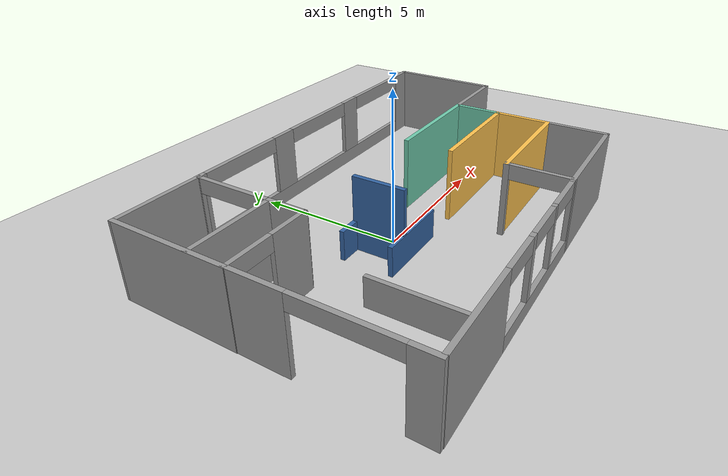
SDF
<sdf version="1.7">
 <world name="default">
  <model name="ground_plane">
   <static>1</static>
   <link name="link">
    <collision name="collision">
     <geometry><plane><normal>0 0 1</normal><size>100 100</size></plane></geometry>
     <surface>
      <contact><collide_bitmask>65535</collide_bitmask></contact>
      <friction><ode><mu>100</mu><mu2>50</mu2></ode></friction>
     </surface>
    </collision>
    <visual name="visual">
     <cast_shadows>0</cast_shadows>
     <geometry><plane><normal>0 0 1</normal><size>100 100</size></plane></geometry>
     <material>
      <script><uri>file://media/materials/scripts/gazebo.material</uri><name>Gazebo/Grey</name></script>
     </material>
    </visual>
   </link>
  </model>
  <model name="fablab_view">
   <pose>1.31147 -0.032179 0 0 -0 0</pose>
   <link name="Wall_11">
    <collision name="Wall_11_Collision">
     <geometry><box><size>1.75 0.15 2.5</size></box></geometry>
     <pose>0 0 1.25 0 -0 0</pose>
    </collision>
    <visual name="Wall_11_Visual">
     <pose>0 0 1.25 0 -0 0</pose>
     <geometry><box><size>1.75 0.15 2.5</size></box></geometry>
     <material>
      <script><uri>file://media/materials/scripts/gazebo.material</uri><name>Gazebo/Grey</name></script>
      <ambient>0.435294 0.796078 0.67451 1</ambient>
     </material>
     <meta><layer>0</layer></meta>
    </visual>
    <pose>4.7545 0.019496 0 0 -0 1.5708</pose>
   </link>
   <link name="Wall_12">
    <collision name="Wall_12_Collision">
     <geometry><box><size>4 0.15 2.5</size></box></geometry>
     <pose>0 0 1.25 0 -0 0</pose>
    </collision>
    <visual name="Wall_12_Visual">
     <pose>0 0 1.25 0 -0 0</pose>
     <geometry><box><size>4 0.15 2.5</size></box></geometry>
     <material>
      <script><uri>file://media/materials/scripts/gazebo.material</uri><name>Gazebo/Grey</name></script>
      <ambient>0.435294 0.796078 0.67451 1</ambient>
     </material>
     <meta><layer>0</layer></meta>
    </visual>
    <pose>2.8295 0.819496 0 0 -0 3.14159</pose>
   </link>
   <link name="Wall_14">
    <collision name="Wall_14_Collision">
     <geometry><box><size>2.75 0.15 2.5</size></box></geometry>
     <pose>0 0 1.25 0 -0 0</pose>
    </collision>
    <visual name="Wall_14_Visual">
     <pose>0 0 1.25 0 -0 0</pose>
     <geometry><box><size>2.75 0.15 2.5</size></box></geometry>
     <material>
      <script><uri>file://media/materials/scripts/gazebo.material</uri><name>Gazebo/Grey</name></script>
      <ambient>1 1 1 1</ambient>
     </material>
     <meta><layer>0</layer></meta>
    </visual>
    <pose>6.0545 0.819496 0 0 -0 0</pose>
   </link>
   <link name="Wall_15">
    <collision name="Wall_15_Collision">
     <geometry><box><size>4 0.15 2.5</size></box></geometry>
     <pose>0 0 1.25 0 -0 0</pose>
    </collision>
    <visual name="Wall_15_Visual">
     <pose>0 0 1.25 0 -0 0</pose>
     <geometry><box><size>4 0.15 2.5</size></box></geometry>
     <material>
      <script><uri>file://media/materials/scripts/gazebo.material</uri><name>Gazebo/Grey</name></script>
      <ambient>1 1 1 1</ambient>
     </material>
     <meta><layer>0</layer></meta>
    </visual>
    <pose>7.3545 2.7445 0 0 -0 1.5708</pose>
   </link>
   <link name="Wall_16">
    <pose>1.4295 4.6695 0 0 -0 3.14159</pose>
    <visual name="Wall_16_Visual_0">
     <pose>-5.53886 0 1.25 0 -0 0</pose>
     <geometry><box><size>0.922275 0.15 2.5</size></box></geometry>
     <material>
      <script><uri>file://media/materials/scripts/gazebo.material</uri><name>Gazebo/Grey</name></script>
      <ambient>1 1 1 1</ambient>
     </material>
     <meta><layer>0</layer></meta>
    </visual>
    <collision name="Wall_16_Collision_0">
     <geometry><box><size>0.922275 0.15 2.5</size></box></geometry>
     <pose>-5.53886 0 1.25 0 -0 0</pose>
    </collision>
    <visual name="Wall_16_Visual_1">
     <pose>0.461138 0 0.25 0 -0 0</pose>
     <geometry><box><size>11.0777 0.15 0.5</size></box></geometry>
     <material>
      <script><uri>file://media/materials/scripts/gazebo.material</uri><name>Gazebo/Grey</name></script>
      <ambient>1 1 1 1</ambient>
     </material>
     <meta><layer>0</layer></meta>
    </visual>
    <collision name="Wall_16_Collision_1">
     <geometry><box><size>11.0777 0.15 0.5</size></box></geometry>
     <pose>0.461138 0 0.25 0 -0 0</pose>
    </collision>
    <visual name="Wall_16_Visual_2">
     <pose>-1.65957 0 1.5 0 -0 0</pose>
     <geometry><box><size>0.836307 0.15 2</size></box></geometry>
     <material>
      <script><uri>file://media/materials/scripts/gazebo.material</uri><name>Gazebo/Grey</name></script>
      <ambient>1 1 1 1</ambient>
     </material>
     <meta><layer>0</layer></meta>
    </visual>
    <collision name="Wall_16_Collision_2">
     <geometry><box><size>0.836307 0.15 2</size></box></geometry>
     <pose>-1.65957 0 1.5 0 -0 0</pose>
    </collision>
    <visual name="Wall_16_Visual_3">
     <pose>2.21629 0 1.5 0 -0 0</pose>
     <geometry><box><size>0.915406 0.15 2</size></box></geometry>
     <material>
      <script><uri>file://media/materials/scripts/gazebo.material</uri><name>Gazebo/Grey</name></script>
      <ambient>1 1 1 1</ambient>
     </material>
     <meta><layer>0</layer></meta>
    </visual>
    <collision name="Wall_16_Collision_3">
     <geometry><box><size>0.915406 0.15 2</size></box></geometry>
     <pose>2.21629 0 1.5 0 -0 0</pose>
    </collision>
    <visual name="Wall_16_Visual_4">
     <pose>5.83699 0 1.5 0 -0 0</pose>
     <geometry><box><size>0.326012 0.15 2</size></box></geometry>
     <material>
      <script><uri>file://media/materials/scripts/gazebo.material</uri><name>Gazebo/Grey</name></script>
      <ambient>1 1 1 1</ambient>
     </material>
     <meta><layer>0</layer></meta>
    </visual>
    <collision name="Wall_16_Collision_4">
     <geometry><box><size>0.326012 0.15 2</size></box></geometry>
     <pose>5.83699 0 1.5 0 -0 0</pose>
    </collision>
    <visual name="Wall_16_Visual_5">
     <pose>-3.57773 0 2.25 0 -0 0</pose>
     <geometry><box><size>3 0.15 0.5</size></box></geometry>
     <material>
      <script><uri>file://media/materials/scripts/gazebo.material</uri><name>Gazebo/Grey</name></script>
      <ambient>1 1 1 1</ambient>
     </material>
     <meta><layer>0</layer></meta>
    </visual>
    <collision name="Wall_16_Collision_5">
     <geometry><box><size>3 0.15 0.5</size></box></geometry>
     <pose>-3.57773 0 2.25 0 -0 0</pose>
    </collision>
    <visual name="Wall_16_Visual_6">
     <pose>0.258582 0 2.25 0 -0 0</pose>
     <geometry><box><size>3 0.15 0.5</size></box></geometry>
     <material>
      <script><uri>file://media/materials/scripts/gazebo.material</uri><name>Gazebo/Grey</name></script>
      <ambient>1 1 1 1</ambient>
     </material>
     <meta><layer>0</layer></meta>
    </visual>
    <collision name="Wall_16_Collision_6">
     <geometry><box><size>3 0.15 0.5</size></box></geometry>
     <pose>0.258582 0 2.25 0 -0 0</pose>
    </collision>
    <visual name="Wall_16_Visual_7">
     <pose>4.17399 0 2.25 0 -0 0</pose>
     <geometry><box><size>3 0.15 0.5</size></box></geometry>
     <material>
      <script><uri>file://media/materials/scripts/gazebo.material</uri><name>Gazebo/Grey</name></script>
      <ambient>1 1 1 1</ambient>
     </material>
     <meta><layer>0</layer></meta>
    </visual>
    <collision name="Wall_16_Collision_7">
     <geometry><box><size>3 0.15 0.5</size></box></geometry>
     <pose>4.17399 0 2.25 0 -0 0</pose>
    </collision>
   </link>
   <link name="Wall_17">
    <pose>-4.4955 2.7445 0 0 -0 -1.5708</pose>
    <visual name="Wall_17_Visual_0">
     <pose>-1.90468 0 1.25 0 -0 0</pose>
     <geometry><box><size>0.190639 0.15 2.5</size></box></geometry>
     <material>
      <script><uri>file://media/materials/scripts/gazebo.material</uri><name>Gazebo/Grey</name></script>
      <ambient>1 1 1 1</ambient>
     </material>
     <meta><layer>0</layer></meta>
    </visual>
    <collision name="Wall_17_Collision_0">
     <geometry><box><size>0.190639 0.15 2.5</size></box></geometry>
     <pose>-1.90468 0 1.25 0 -0 0</pose>
    </collision>
    <visual name="Wall_17_Visual_1">
     <pose>1.33216 0 1.25 0 -0 0</pose>
     <geometry><box><size>1.33569 0.15 2.5</size></box></geometry>
     <material>
      <script><uri>file://media/materials/scripts/gazebo.material</uri><name>Gazebo/Grey</name></script>
      <ambient>1 1 1 1</ambient>
     </material>
     <meta><layer>0</layer></meta>
    </visual>
    <collision name="Wall_17_Collision_1">
     <geometry><box><size>1.33569 0.15 2.5</size></box></geometry>
     <pose>1.33216 0 1.25 0 -0 0</pose>
    </collision>
    <visual name="Wall_17_Visual_2">
     <pose>-0.572525 0 2.25 0 -0 0</pose>
     <geometry><box><size>2.47367 0.15 0.5</size></box></geometry>
     <material>
      <script><uri>file://media/materials/scripts/gazebo.material</uri><name>Gazebo/Grey</name></script>
      <ambient>1 1 1 1</ambient>
     </material>
     <meta><layer>0</layer></meta>
    </visual>
    <collision name="Wall_17_Collision_2">
     <geometry><box><size>2.47367 0.15 0.5</size></box></geometry>
     <pose>-0.572525 0 2.25 0 -0 0</pose>
    </collision>
   </link>
   <link name="Wall_30">
    <pose>-7.34259 -1.98229 0 0 -0 1.5708</pose>
    <visual name="Wall_30_Visual_0">
     <pose>-2.34687 0 1.25 0 -0 0</pose>
     <geometry><box><size>0.80625 0.15 2.5</size></box></geometry>
     <material>
      <script><uri>file://media/materials/scripts/gazebo.material</uri><name>Gazebo/Grey</name></script>
      <ambient>1 1 1 1</ambient>
     </material>
     <meta><layer>0</layer></meta>
    </visual>
    <collision name="Wall_30_Collision_0">
     <geometry><box><size>0.80625 0.15 2.5</size></box></geometry>
     <pose>-2.34687 0 1.25 0 -0 0</pose>
    </collision>
    <visual name="Wall_30_Visual_1">
     <pose>1.90312 0 1.25 0 -0 0</pose>
     <geometry><box><size>1.69375 0.15 2.5</size></box></geometry>
     <material>
      <script><uri>file://media/materials/scripts/gazebo.material</uri><name>Gazebo/Grey</name></script>
      <ambient>1 1 1 1</ambient>
     </material>
     <meta><layer>0</layer></meta>
    </visual>
    <collision name="Wall_30_Collision_1">
     <geometry><box><size>1.69375 0.15 2.5</size></box></geometry>
     <pose>1.90312 0 1.25 0 -0 0</pose>
    </collision>
    <visual name="Wall_30_Visual_2">
     <pose>-0.44375 0 2.25 0 -0 0</pose>
     <geometry><box><size>3 0.15 0.5</size></box></geometry>
     <material>
      <script><uri>file://media/materials/scripts/gazebo.material</uri><name>Gazebo/Grey</name></script>
      <ambient>1 1 1 1</ambient>
     </material>
     <meta><layer>0</layer></meta>
    </visual>
    <collision name="Wall_30_Collision_2">
     <geometry><box><size>3 0.15 0.5</size></box></geometry>
     <pose>-0.44375 0 2.25 0 -0 0</pose>
    </collision>
   </link>
   <link name="Wall_34">
    <pose>-5.93333 0.816291 0 0 -0 3.14159</pose>
    <visual name="Wall_34_Visual_0">
     <pose>-0.816427 0 1.25 0 -0 0</pose>
     <geometry><box><size>1.35715 0.15 2.5</size></box></geometry>
     <material>
      <script><uri>file://media/materials/scripts/gazebo.material</uri><name>Gazebo/Grey</name></script>
      <ambient>1 1 1 1</ambient>
     </material>
     <meta><layer>0</layer></meta>
    </visual>
    <collision name="Wall_34_Collision_0">
     <geometry><box><size>1.35715 0.15 2.5</size></box></geometry>
     <pose>-0.816427 0 1.25 0 -0 0</pose>
    </collision>
    <visual name="Wall_34_Visual_1">
     <pose>1.42857 0 1.25 0 -0 0</pose>
     <geometry><box><size>0.132854 0.15 2.5</size></box></geometry>
     <material>
      <script><uri>file://media/materials/scripts/gazebo.material</uri><name>Gazebo/Grey</name></script>
      <ambient>1 1 1 1</ambient>
     </material>
     <meta><layer>0</layer></meta>
    </visual>
    <collision name="Wall_34_Collision_1">
     <geometry><box><size>0.132854 0.15 2.5</size></box></geometry>
     <pose>1.42857 0 1.25 0 -0 0</pose>
    </collision>
    <visual name="Wall_34_Visual_2">
     <pose>0.612146 0 2.25 0 -0 0</pose>
     <geometry><box><size>1.5 0.15 0.5</size></box></geometry>
     <material>
      <script><uri>file://media/materials/scripts/gazebo.material</uri><name>Gazebo/Grey</name></script>
      <ambient>1 1 1 1</ambient>
     </material>
     <meta><layer>0</layer></meta>
    </visual>
    <collision name="Wall_34_Collision_2">
     <geometry><box><size>1.5 0.15 0.5</size></box></geometry>
     <pose>0.612146 0 2.25 0 -0 0</pose>
    </collision>
   </link>
   <link name="Wall_38">
    <collision name="Wall_38_Collision">
     <geometry><box><size>3.75 0.15 1</size></box></geometry>
     <pose>0 0 0.5 0 -0 0</pose>
    </collision>
    <visual name="Wall_38_Visual">
     <pose>0 0 0.5 0 -0 0</pose>
     <geometry><box><size>3.75 0.15 1</size></box></geometry>
     <material>
      <script><uri>file://media/materials/scripts/gazebo.material</uri><name>Gazebo/Grey</name></script>
      <ambient>1 1 1 1</ambient>
     </material>
     <meta><layer>0</layer></meta>
    </visual>
    <pose>-4.32559 -2.77929 0 0 -0 -1.5708</pose>
   </link>
   <link name="Wall_4">
    <pose>-3.16071 -4.66967 0 0 -0 0</pose>
    <visual name="Wall_4_Visual_0">
     <pose>-2.55675 0 1.25 0 -0 0</pose>
     <geometry><box><size>3.13649 0.15 2.5</size></box></geometry>
     <material>
      <script><uri>file://media/materials/scripts/gazebo.material</uri><name>Gazebo/Grey</name></script>
      <ambient>1 1 1 1</ambient>
     </material>
     <meta><layer>0</layer></meta>
    </visual>
    <collision name="Wall_4_Collision_0">
     <geometry><box><size>3.13649 0.15 2.5</size></box></geometry>
     <pose>-2.55675 0 1.25 0 -0 0</pose>
    </collision>
    <visual name="Wall_4_Visual_1">
     <pose>1.56825 0 0.25 0 -0 0</pose>
     <geometry><box><size>5.11351 0.15 0.5</size></box></geometry>
     <material>
      <script><uri>file://media/materials/scripts/gazebo.material</uri><name>Gazebo/Grey</name></script>
      <ambient>1 1 1 1</ambient>
     </material>
     <meta><layer>0</layer></meta>
    </visual>
    <collision name="Wall_4_Collision_1">
     <geometry><box><size>5.11351 0.15 0.5</size></box></geometry>
     <pose>1.56825 0 0.25 0 -0 0</pose>
    </collision>
    <visual name="Wall_4_Visual_2">
     <pose>0.61675 0 1.5 0 -0 0</pose>
     <geometry><box><size>0.210518 0.15 2</size></box></geometry>
     <material>
      <script><uri>file://media/materials/scripts/gazebo.material</uri><name>Gazebo/Grey</name></script>
      <ambient>1 1 1 1</ambient>
     </material>
     <meta><layer>0</layer></meta>
    </visual>
    <collision name="Wall_4_Collision_2">
     <geometry><box><size>0.210518 0.15 2</size></box></geometry>
     <pose>0.61675 0 1.5 0 -0 0</pose>
    </collision>
    <visual name="Wall_4_Visual_3">
     <pose>2.30255 0 1.5 0 -0 0</pose>
     <geometry><box><size>0.161081 0.15 2</size></box></geometry>
     <material>
      <script><uri>file://media/materials/scripts/gazebo.material</uri><name>Gazebo/Grey</name></script>
      <ambient>1 1 1 1</ambient>
     </material>
     <meta><layer>0</layer></meta>
    </visual>
    <collision name="Wall_4_Collision_3">
     <geometry><box><size>0.161081 0.15 2</size></box></geometry>
     <pose>2.30255 0 1.5 0 -0 0</pose>
    </collision>
    <visual name="Wall_4_Visual_4">
     <pose>4.00404 0 1.5 0 -0 0</pose>
     <geometry><box><size>0.24191 0.15 2</size></box></geometry>
     <material>
      <script><uri>file://media/materials/scripts/gazebo.material</uri><name>Gazebo/Grey</name></script>
      <ambient>1 1 1 1</ambient>
     </material>
     <meta><layer>0</layer></meta>
    </visual>
    <collision name="Wall_4_Collision_4">
     <geometry><box><size>0.24191 0.15 2</size></box></geometry>
     <pose>4.00404 0 1.5 0 -0 0</pose>
    </collision>
    <visual name="Wall_4_Visual_5">
     <pose>-0.238509 0 2.25 0 -0 0</pose>
     <geometry><box><size>1.5 0.15 0.5</size></box></geometry>
     <material>
      <script><uri>file://media/materials/scripts/gazebo.material</uri><name>Gazebo/Grey</name></script>
      <ambient>1 1 1 1</ambient>
     </material>
     <meta><layer>0</layer></meta>
    </visual>
    <collision name="Wall_4_Collision_5">
     <geometry><box><size>1.5 0.15 0.5</size></box></geometry>
     <pose>-0.238509 0 2.25 0 -0 0</pose>
    </collision>
    <visual name="Wall_4_Visual_6">
     <pose>1.47201 0 2.25 0 -0 0</pose>
     <geometry><box><size>1.5 0.15 0.5</size></box></geometry>
     <material>
      <script><uri>file://media/materials/scripts/gazebo.material</uri><name>Gazebo/Grey</name></script>
      <ambient>1 1 1 1</ambient>
     </material>
     <meta><layer>0</layer></meta>
    </visual>
    <collision name="Wall_4_Collision_6">
     <geometry><box><size>1.5 0.15 0.5</size></box></geometry>
     <pose>1.47201 0 2.25 0 -0 0</pose>
    </collision>
    <visual name="Wall_4_Visual_7">
     <pose>3.13309 0 2.25 0 -0 0</pose>
     <geometry><box><size>1.5 0.15 0.5</size></box></geometry>
     <material>
      <script><uri>file://media/materials/scripts/gazebo.material</uri><name>Gazebo/Grey</name></script>
      <ambient>1 1 1 1</ambient>
     </material>
     <meta><layer>0</layer></meta>
    </visual>
    <collision name="Wall_4_Collision_7">
     <geometry><box><size>1.5 0.15 0.5</size></box></geometry>
     <pose>3.13309 0 2.25 0 -0 0</pose>
    </collision>
   </link>
   <link name="Wall_40">
    <collision name="Wall_40_Collision">
     <geometry><box><size>2.5 0.15 1</size></box></geometry>
     <pose>0 0 0.5 0 -0 0</pose>
    </collision>
    <visual name="Wall_40_Visual">
     <pose>0 0 0.5 0 -0 0</pose>
     <geometry><box><size>2.5 0.15 1</size></box></geometry>
     <material>
      <script><uri>file://media/materials/scripts/gazebo.material</uri><name>Gazebo/Grey</name></script>
      <ambient>0.203922 0.396078 0.643137 1</ambient>
     </material>
     <meta><layer>0</layer></meta>
    </visual>
    <pose>-1.63659 -0.814287 0 0 -0 0</pose>
   </link>
   <link name="Wall_42">
    <collision name="Wall_42_Collision">
     <geometry><box><size>3 0.15 2.5</size></box></geometry>
     <pose>0 0 1.25 0 -0 0</pose>
    </collision>
    <visual name="Wall_42_Visual">
     <pose>0 0 1.25 0 -0 0</pose>
     <geometry><box><size>3 0.15 2.5</size></box></geometry>
     <material>
      <script><uri>file://media/materials/scripts/gazebo.material</uri><name>Gazebo/Grey</name></script>
      <ambient>1 1 1 1</ambient>
     </material>
     <meta><layer>0</layer></meta>
    </visual>
    <pose>-5.9205 4.6695 0 0 -0 3.14159</pose>
   </link>
   <link name="Wall_43">
    <collision name="Wall_43_Collision">
     <geometry><box><size>3.9861 0.15 2.5</size></box></geometry>
     <pose>0 0 1.25 0 -0 0</pose>
    </collision>
    <visual name="Wall_43_Visual">
     <pose>0 0 1.25 0 -0 0</pose>
     <geometry><box><size>3.9861 0.15 2.5</size></box></geometry>
     <material>
      <script><uri>file://media/materials/scripts/gazebo.material</uri><name>Gazebo/Grey</name></script>
      <ambient>1 1 1 1</ambient>
     </material>
     <meta><layer>0</layer></meta>
    </visual>
    <pose>-7.34991 2.75145 0 0 -0 -1.5731</pose>
   </link>
   <link name="Wall_45">
    <collision name="Wall_45_Collision">
     <geometry><box><size>3 0.15 2.5</size></box></geometry>
     <pose>0 0 1.25 0 -0 0</pose>
    </collision>
    <visual name="Wall_45_Visual">
     <pose>0 0 1.25 0 -0 0</pose>
     <geometry><box><size>3 0.15 2.5</size></box></geometry>
     <material>
      <script><uri>file://media/materials/scripts/gazebo.material</uri><name>Gazebo/Grey</name></script>
      <ambient>1 1 1 1</ambient>
     </material>
     <meta><layer>0</layer></meta>
    </visual>
    <pose>-5.9241 2.01165 0 0 -0 3.14159</pose>
   </link>
   <link name="Wall_47">
    <collision name="Wall_47_Collision">
     <geometry><box><size>2.5 0.15 1</size></box></geometry>
     <pose>0 0 0.5 0 -0 0</pose>
    </collision>
    <visual name="Wall_47_Visual">
     <pose>0 0 0.5 0 -0 0</pose>
     <geometry><box><size>2.5 0.15 1</size></box></geometry>
     <material>
      <script><uri>file://media/materials/scripts/gazebo.material</uri><name>Gazebo/Grey</name></script>
      <ambient>0.203922 0.396078 0.643137 1</ambient>
     </material>
     <meta><layer>0</layer></meta>
    </visual>
    <pose>-1.65359 0.830713 0 0 -0 3.14159</pose>
   </link>
   <link name="Wall_49">
    <collision name="Wall_49_Collision">
     <geometry><box><size>1.75 0.15 2.5</size></box></geometry>
     <pose>0 0 1.25 0 -0 0</pose>
    </collision>
    <visual name="Wall_49_Visual">
     <pose>0 0 1.25 0 -0 0</pose>
     <geometry><box><size>1.75 0.15 2.5</size></box></geometry>
     <material>
      <script><uri>file://media/materials/scripts/gazebo.material</uri><name>Gazebo/Grey</name></script>
      <ambient>0.203922 0.396078 0.643137 1</ambient>
     </material>
     <meta><layer>0</layer></meta>
    </visual>
    <pose>-2.13815 0.007319 0 0 -0 -1.5708</pose>
   </link>
   <link name="Wall_5">
    <pose>0.9045 -3.65009 0 0 -0 1.5708</pose>
    <visual name="Wall_5_Visual_0">
     <pose>-1.05133 0 1.25 0 -0 0</pose>
     <geometry><box><size>0.086513 0.15 2.5</size></box></geometry>
     <material>
      <script><uri>file://media/materials/scripts/gazebo.material</uri><name>Gazebo/Grey</name></script>
      <ambient>1 1 1 1</ambient>
     </material>
     <meta><layer>0</layer></meta>
    </visual>
    <collision name="Wall_5_Collision_0">
     <geometry><box><size>0.086513 0.15 2.5</size></box></geometry>
     <pose>-1.05133 0 1.25 0 -0 0</pose>
    </collision>
    <visual name="Wall_5_Visual_1">
     <pose>1.00066 0 1.25 0 -0 0</pose>
     <geometry><box><size>0.187847 0.15 2.5</size></box></geometry>
     <material>
      <script><uri>file://media/materials/scripts/gazebo.material</uri><name>Gazebo/Grey</name></script>
      <ambient>1 1 1 1</ambient>
     </material>
     <meta><layer>0</layer></meta>
    </visual>
    <collision name="Wall_5_Collision_1">
     <geometry><box><size>0.187847 0.15 2.5</size></box></geometry>
     <pose>1.00066 0 1.25 0 -0 0</pose>
    </collision>
    <visual name="Wall_5_Visual_2">
     <pose>-0.050667 0 2.25 0 -0 0</pose>
     <geometry><box><size>1.91481 0.15 0.5</size></box></geometry>
     <material>
      <script><uri>file://media/materials/scripts/gazebo.material</uri><name>Gazebo/Grey</name></script>
      <ambient>1 1 1 1</ambient>
     </material>
     <meta><layer>0</layer></meta>
    </visual>
    <collision name="Wall_5_Collision_2">
     <geometry><box><size>1.91481 0.15 0.5</size></box></geometry>
     <pose>-0.050667 0 2.25 0 -0 0</pose>
    </collision>
   </link>
   <link name="Wall_51">
    <collision name="Wall_51_Collision">
     <geometry><box><size>2.189 0.15 2.5</size></box></geometry>
     <pose>0 0 1.25 0 -0 0</pose>
    </collision>
    <visual name="Wall_51_Visual">
     <pose>0 0 1.25 0 -0 0</pose>
     <geometry><box><size>2.189 0.15 2.5</size></box></geometry>
     <material>
      <script><uri>file://media/materials/scripts/gazebo.material</uri><name>Gazebo/Grey</name></script>
      <ambient>1 1 1 1</ambient>
     </material>
     <meta><layer>0</layer></meta>
    </visual>
    <pose>4.7545 -3.65 0 0 -0 -1.5708</pose>
   </link>
   <link name="Wall_52">
    <collision name="Wall_52_Collision">
     <geometry><box><size>4 0.15 2.5</size></box></geometry>
     <pose>0 0 1.25 0 -0 0</pose>
    </collision>
    <visual name="Wall_52_Visual">
     <pose>0 0 1.25 0 -0 0</pose>
     <geometry><box><size>4 0.15 2.5</size></box></geometry>
     <material>
      <script><uri>file://media/materials/scripts/gazebo.material</uri><name>Gazebo/Grey</name></script>
      <ambient>1 1 1 1</ambient>
     </material>
     <meta><layer>0</layer></meta>
    </visual>
    <pose>2.8295 -4.6695 0 0 -0 3.14159</pose>
   </link>
   <link name="Wall_6">
    <collision name="Wall_6_Collision">
     <geometry><box><size>4 0.15 2.5</size></box></geometry>
     <pose>0 0 1.25 0 -0 0</pose>
    </collision>
    <visual name="Wall_6_Visual">
     <pose>0 0 1.25 0 -0 0</pose>
     <geometry><box><size>4 0.15 2.5</size></box></geometry>
     <material>
      <script><uri>file://media/materials/scripts/gazebo.material</uri><name>Gazebo/Grey</name></script>
      <ambient>1 0.764706 0.305882 1</ambient>
     </material>
     <meta><layer>0</layer></meta>
    </visual>
    <pose>2.8295 -2.6305 0 0 -0 0</pose>
   </link>
   <link name="Wall_7">
    <collision name="Wall_7_Collision">
     <geometry><box><size>2 0.15 2.5</size></box></geometry>
     <pose>0 0 1.25 0 -0 0</pose>
    </collision>
    <visual name="Wall_7_Visual">
     <pose>0 0 1.25 0 -0 0</pose>
     <geometry><box><size>2 0.15 2.5</size></box></geometry>
     <material>
      <script><uri>file://media/materials/scripts/gazebo.material</uri><name>Gazebo/Grey</name></script>
      <ambient>1 0.764706 0.305882 1</ambient>
     </material>
     <meta><layer>0</layer></meta>
    </visual>
    <pose>4.7545 -1.7055 0 0 -0 1.5708</pose>
   </link>
   <link name="Wall_8">
    <collision name="Wall_8_Collision">
     <geometry><box><size>4 0.15 2.5</size></box></geometry>
     <pose>0 0 1.25 0 -0 0</pose>
    </collision>
    <visual name="Wall_8_Visual">
     <pose>0 0 1.25 0 -0 0</pose>
     <geometry><box><size>4 0.15 2.5</size></box></geometry>
     <material>
      <script><uri>file://media/materials/scripts/gazebo.material</uri><name>Gazebo/Grey</name></script>
      <ambient>1 0.764706 0.305882 1</ambient>
     </material>
     <meta><layer>0</layer></meta>
    </visual>
    <pose>2.8295 -0.780504 0 0 -0 3.14159</pose>
   </link>
   <static>1</static>
  </model>
 </world>
</sdf>
